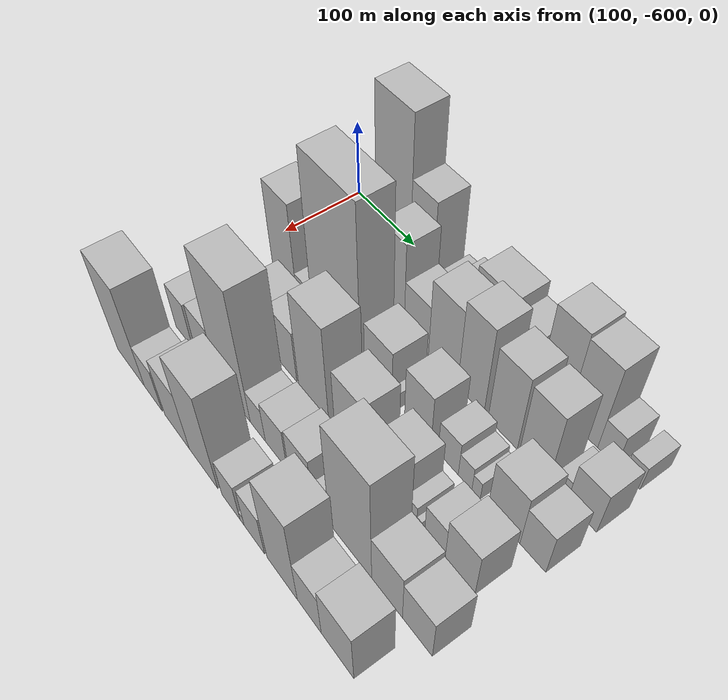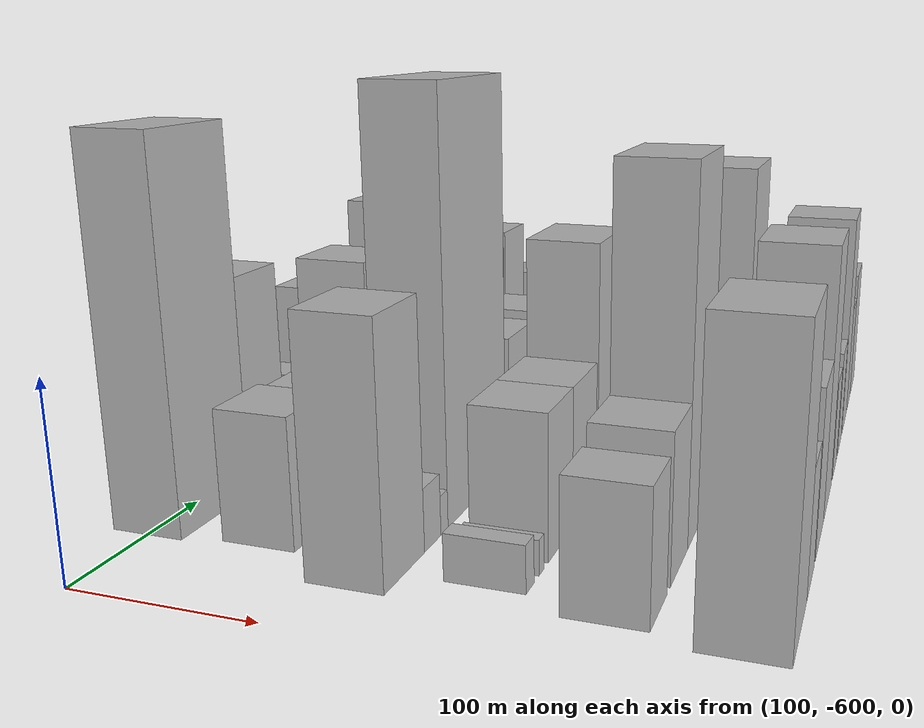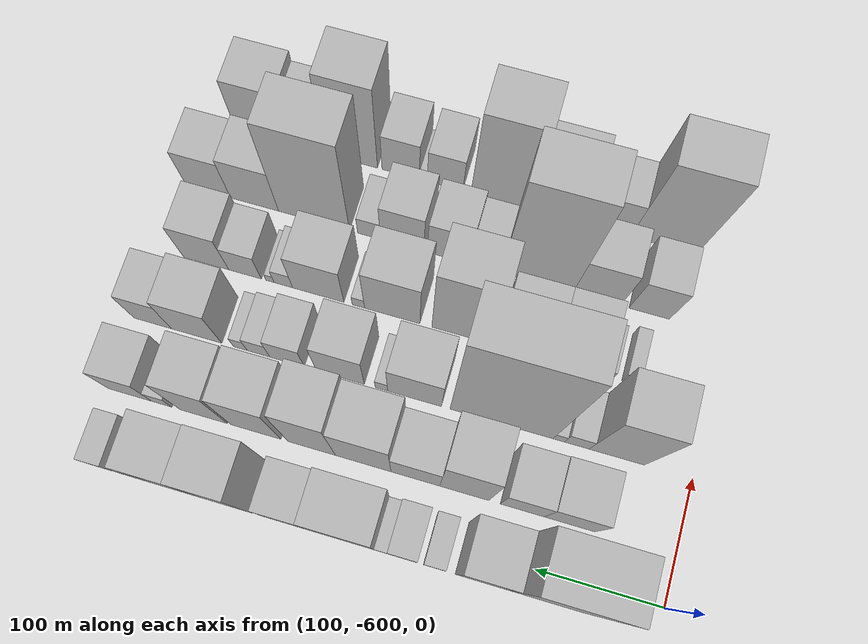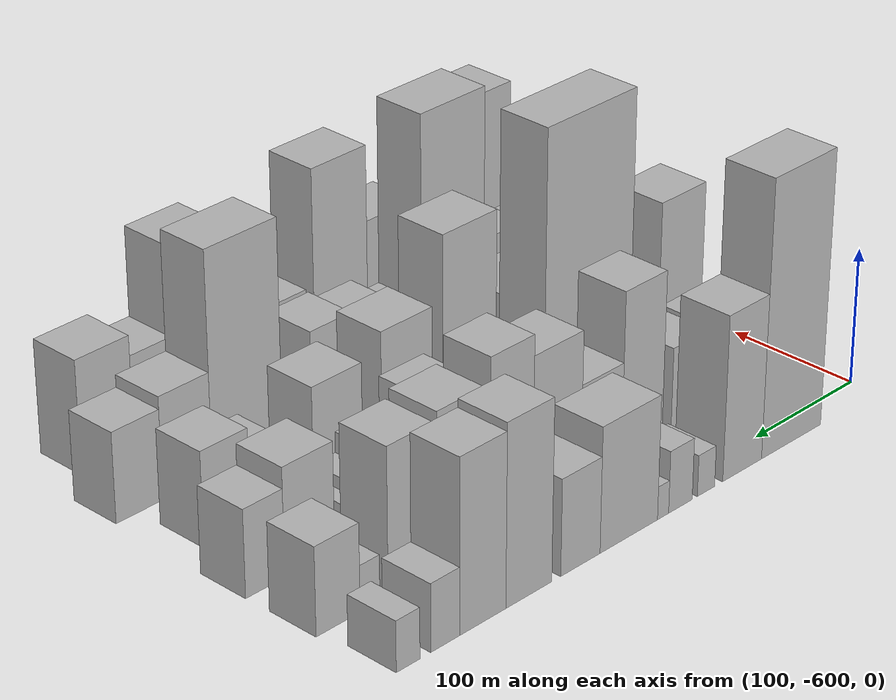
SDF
<sdf version="1.6">
 <world name="default">
  <model name="building_12">
   <static>1</static>
   <pose>100.0000 -511.8463 0 0.000000 0.000000 0.000000</pose>
   <link name="link">
    <pose>0 0 100.50 0 0 0</pose>
    <collision name="collision"><geometry><box><size>40.0000 60.7174 201.0000</size></box></geometry></collision>
    <visual name="visual">
     <cast_shadows>0</cast_shadows>
     <geometry><box><size>40.0000 60.7174 201.0000</size></box></geometry>
     <material>
      <script>
       <uri>model://HANNAS_wall/materials/scripts</uri>
       <uri>model://HANNAS_wall/materials/textures</uri>
       <name>vrc/HANNAS_wall</name>
      </script>
     </material>
    </visual>
   </link>
  </model>
  <model name="building_13">
   <static>1</static>
   <pose>100.0000 -462.0579 0 0.000000 0.000000 0.000000</pose>
   <link name="link">
    <pose>0 0 60.00 0 0 0</pose>
    <collision name="collision"><geometry><box><size>40.0000 38.8594 120.0000</size></box></geometry></collision>
    <visual name="visual">
     <cast_shadows>0</cast_shadows>
     <geometry><box><size>40.0000 38.8594 120.0000</size></box></geometry>
     <material>
      <script>
       <uri>model://HANNAS_wall/materials/scripts</uri>
       <uri>model://HANNAS_wall/materials/textures</uri>
       <name>vrc/HANNAS_wall</name>
      </script>
     </material>
    </visual>
   </link>
  </model>
  <model name="building_14">
   <static>1</static>
   <pose>100.0000 -426.1615 0 0.000000 0.000000 0.000000</pose>
   <link name="link">
    <pose>0 0 15.00 0 0 0</pose>
    <collision name="collision"><geometry><box><size>40.0000 16.9334 30.0000</size></box></geometry></collision>
    <visual name="visual">
     <cast_shadows>0</cast_shadows>
     <geometry><box><size>40.0000 16.9334 30.0000</size></box></geometry>
     <material>
      <script>
       <uri>model://HANNAS_wall/materials/scripts</uri>
       <uri>model://HANNAS_wall/materials/textures</uri>
       <name>vrc/HANNAS_wall</name>
      </script>
     </material>
    </visual>
   </link>
  </model>
  <model name="building_15">
   <static>1</static>
   <pose>100.0000 -401.3108 0 0.000000 0.000000 0.000000</pose>
   <link name="link">
    <pose>0 0 22.50 0 0 0</pose>
    <collision name="collision"><geometry><box><size>40.0000 22.7680 45.0000</size></box></geometry></collision>
    <visual name="visual">
     <cast_shadows>0</cast_shadows>
     <geometry><box><size>40.0000 22.7680 45.0000</size></box></geometry>
     <material>
      <script>
       <uri>model://HANNAS_wall/materials/scripts</uri>
       <uri>model://HANNAS_wall/materials/textures</uri>
       <name>vrc/HANNAS_wall</name>
      </script>
     </material>
    </visual>
   </link>
  </model>
  <model name="building_16">
   <static>1</static>
   <pose>100.0000 -384.6139 0 0.000000 0.000000 0.000000</pose>
   <link name="link">
    <pose>0 0 12.00 0 0 0</pose>
    <collision name="collision"><geometry><box><size>40.0000 10.6258 24.0000</size></box></geometry></collision>
    <visual name="visual">
     <cast_shadows>0</cast_shadows>
     <geometry><box><size>40.0000 10.6258 24.0000</size></box></geometry>
     <material>
      <script>
       <uri>model://HANNAS_wall/materials/scripts</uri>
       <uri>model://HANNAS_wall/materials/textures</uri>
       <name>vrc/HANNAS_wall</name>
      </script>
     </material>
    </visual>
   </link>
  </model>
  <model name="building_17">
   <static>1</static>
   <pose>100.0000 -352.3852 0 0.000000 0.000000 0.000000</pose>
   <link name="link">
    <pose>0 0 45.00 0 0 0</pose>
    <collision name="collision"><geometry><box><size>40.0000 53.8316 90.0000</size></box></geometry></collision>
    <visual name="visual">
     <cast_shadows>0</cast_shadows>
     <geometry><box><size>40.0000 53.8316 90.0000</size></box></geometry>
     <material>
      <script>
       <uri>model://HANNAS_wall/materials/scripts</uri>
       <uri>model://HANNAS_wall/materials/textures</uri>
       <name>vrc/HANNAS_wall</name>
      </script>
     </material>
    </visual>
   </link>
  </model>
  <model name="building_18">
   <static>1</static>
   <pose>100.0000 -307.5381 0 0.000000 0.000000 0.000000</pose>
   <link name="link">
    <pose>0 0 34.50 0 0 0</pose>
    <collision name="collision"><geometry><box><size>40.0000 35.8625 69.0000</size></box></geometry></collision>
    <visual name="visual">
     <cast_shadows>0</cast_shadows>
     <geometry><box><size>40.0000 35.8625 69.0000</size></box></geometry>
     <material>
      <script>
       <uri>model://HANNAS_wall/materials/scripts</uri>
       <uri>model://HANNAS_wall/materials/textures</uri>
       <name>vrc/HANNAS_wall</name>
      </script>
     </material>
    </visual>
   </link>
  </model>
  <model name="building_19">
   <static>1</static>
   <pose>100.0000 -261.2443 0 0.000000 0.000000 0.000000</pose>
   <link name="link">
    <pose>0 0 64.50 0 0 0</pose>
    <collision name="collision"><geometry><box><size>40.0000 40.7252 129.0000</size></box></geometry></collision>
    <visual name="visual">
     <cast_shadows>0</cast_shadows>
     <geometry><box><size>40.0000 40.7252 129.0000</size></box></geometry>
     <material>
      <script>
       <uri>model://HANNAS_wall/materials/scripts</uri>
       <uri>model://HANNAS_wall/materials/textures</uri>
       <name>vrc/HANNAS_wall</name>
      </script>
     </material>
    </visual>
   </link>
  </model>
  <model name="building_20">
   <static>1</static>
   <pose>100.0000 -220.8831 0 0.000000 0.000000 0.000000</pose>
   <link name="link">
    <pose>0 0 61.50 0 0 0</pose>
    <collision name="collision"><geometry><box><size>40.0000 39.9972 123.0000</size></box></geometry></collision>
    <visual name="visual">
     <cast_shadows>0</cast_shadows>
     <geometry><box><size>40.0000 39.9972 123.0000</size></box></geometry>
     <material>
      <script>
       <uri>model://HANNAS_wall/materials/scripts</uri>
       <uri>model://HANNAS_wall/materials/textures</uri>
       <name>vrc/HANNAS_wall</name>
      </script>
     </material>
    </visual>
   </link>
  </model>
  <model name="building_21">
   <static>1</static>
   <pose>100.0000 -188.6881 0 0.000000 0.000000 0.000000</pose>
   <link name="link">
    <pose>0 0 24.00 0 0 0</pose>
    <collision name="collision"><geometry><box><size>40.0000 24.3927 48.0000</size></box></geometry></collision>
    <visual name="visual">
     <cast_shadows>0</cast_shadows>
     <geometry><box><size>40.0000 24.3927 48.0000</size></box></geometry>
     <material>
      <script>
       <uri>model://HANNAS_wall/materials/scripts</uri>
       <uri>model://HANNAS_wall/materials/textures</uri>
       <name>vrc/HANNAS_wall</name>
      </script>
     </material>
    </visual>
   </link>
  </model>
  <model name="building_22">
   <static>1</static>
   <pose>100.0000 -157.6427 0 0.000000 0.000000 0.000000</pose>
   <link name="link">
    <pose>0 0 18.00 0 0 0</pose>
    <collision name="collision"><geometry><box><size>40.0000 19.6980 36.0000</size></box></geometry></collision>
    <visual name="visual">
     <cast_shadows>0</cast_shadows>
     <geometry><box><size>40.0000 19.6980 36.0000</size></box></geometry>
     <material>
      <script>
       <uri>model://HANNAS_wall/materials/scripts</uri>
       <uri>model://HANNAS_wall/materials/textures</uri>
       <name>vrc/HANNAS_wall</name>
      </script>
     </material>
    </visual>
   </link>
  </model>
  <model name="building_69">
   <static>1</static>
   <pose>160.0000 -516.7178 0 0.000000 0.000000 0.000000</pose>
   <link name="link">
    <pose>0 0 34.50 0 0 0</pose>
    <collision name="collision"><geometry><box><size>40.0000 39.8505 69.0000</size></box></geometry></collision>
    <visual name="visual">
     <cast_shadows>0</cast_shadows>
     <geometry><box><size>40.0000 39.8505 69.0000</size></box></geometry>
     <material>
      <script>
       <uri>model://HANNAS_wall/materials/scripts</uri>
       <uri>model://HANNAS_wall/materials/textures</uri>
       <name>vrc/HANNAS_wall</name>
      </script>
     </material>
    </visual>
   </link>
  </model>
  <model name="building_70">
   <static>1</static>
   <pose>160.0000 -479.3615 0 0.000000 0.000000 0.000000</pose>
   <link name="link">
    <pose>0 0 33.00 0 0 0</pose>
    <collision name="collision"><geometry><box><size>40.0000 34.8621 66.0000</size></box></geometry></collision>
    <visual name="visual">
     <cast_shadows>0</cast_shadows>
     <geometry><box><size>40.0000 34.8621 66.0000</size></box></geometry>
     <material>
      <script>
       <uri>model://HANNAS_wall/materials/scripts</uri>
       <uri>model://HANNAS_wall/materials/textures</uri>
       <name>vrc/HANNAS_wall</name>
      </script>
     </material>
    </visual>
   </link>
  </model>
  <model name="building_71">
   <static>1</static>
   <pose>160.0000 -433.1815 0 0.000000 0.000000 0.000000</pose>
   <link name="link">
    <pose>0 0 63.00 0 0 0</pose>
    <collision name="collision"><geometry><box><size>40.0000 39.4978 126.0000</size></box></geometry></collision>
    <visual name="visual">
     <cast_shadows>0</cast_shadows>
     <geometry><box><size>40.0000 39.4978 126.0000</size></box></geometry>
     <material>
      <script>
       <uri>model://HANNAS_wall/materials/scripts</uri>
       <uri>model://HANNAS_wall/materials/textures</uri>
       <name>vrc/HANNAS_wall</name>
      </script>
     </material>
    </visual>
   </link>
  </model>
  <model name="building_72">
   <static>1</static>
   <pose>160.0000 -393.9403 0 0.000000 0.000000 0.000000</pose>
   <link name="link">
    <pose>0 0 37.50 0 0 0</pose>
    <collision name="collision"><geometry><box><size>40.0000 38.9846 75.0000</size></box></geometry></collision>
    <visual name="visual">
     <cast_shadows>0</cast_shadows>
     <geometry><box><size>40.0000 38.9846 75.0000</size></box></geometry>
     <material>
      <script>
       <uri>model://HANNAS_wall/materials/scripts</uri>
       <uri>model://HANNAS_wall/materials/textures</uri>
       <name>vrc/HANNAS_wall</name>
      </script>
     </material>
    </visual>
   </link>
  </model>
  <model name="building_73">
   <static>1</static>
   <pose>160.0000 -351.9945 0 0.000000 0.000000 0.000000</pose>
   <link name="link">
    <pose>0 0 57.00 0 0 0</pose>
    <collision name="collision"><geometry><box><size>40.0000 44.9070 114.0000</size></box></geometry></collision>
    <visual name="visual">
     <cast_shadows>0</cast_shadows>
     <geometry><box><size>40.0000 44.9070 114.0000</size></box></geometry>
     <material>
      <script>
       <uri>model://HANNAS_wall/materials/scripts</uri>
       <uri>model://HANNAS_wall/materials/textures</uri>
       <name>vrc/HANNAS_wall</name>
      </script>
     </material>
    </visual>
   </link>
  </model>
  <model name="building_74">
   <static>1</static>
   <pose>160.0000 -310.1380 0 0.000000 0.000000 0.000000</pose>
   <link name="link">
    <pose>0 0 64.50 0 0 0</pose>
    <collision name="collision"><geometry><box><size>40.0000 38.8060 129.0000</size></box></geometry></collision>
    <visual name="visual">
     <cast_shadows>0</cast_shadows>
     <geometry><box><size>40.0000 38.8060 129.0000</size></box></geometry>
     <material>
      <script>
       <uri>model://HANNAS_wall/materials/scripts</uri>
       <uri>model://HANNAS_wall/materials/textures</uri>
       <name>vrc/HANNAS_wall</name>
      </script>
     </material>
    </visual>
   </link>
  </model>
  <model name="building_75">
   <static>1</static>
   <pose>160.0000 -264.1996 0 0.000000 0.000000 0.000000</pose>
   <link name="link">
    <pose>0 0 55.50 0 0 0</pose>
    <collision name="collision"><geometry><box><size>40.0000 41.0709 111.0000</size></box></geometry></collision>
    <visual name="visual">
     <cast_shadows>0</cast_shadows>
     <geometry><box><size>40.0000 41.0709 111.0000</size></box></geometry>
     <material>
      <script>
       <uri>model://HANNAS_wall/materials/scripts</uri>
       <uri>model://HANNAS_wall/materials/textures</uri>
       <name>vrc/HANNAS_wall</name>
      </script>
     </material>
    </visual>
   </link>
  </model>
  <model name="building_76">
   <static>1</static>
   <pose>160.0000 -221.0516 0 0.000000 0.000000 0.000000</pose>
   <link name="link">
    <pose>0 0 52.50 0 0 0</pose>
    <collision name="collision"><geometry><box><size>40.0000 39.2251 105.0000</size></box></geometry></collision>
    <visual name="visual">
     <cast_shadows>0</cast_shadows>
     <geometry><box><size>40.0000 39.2251 105.0000</size></box></geometry>
     <material>
      <script>
       <uri>model://HANNAS_wall/materials/scripts</uri>
       <uri>model://HANNAS_wall/materials/textures</uri>
       <name>vrc/HANNAS_wall</name>
      </script>
     </material>
    </visual>
   </link>
  </model>
  <model name="building_77">
   <static>1</static>
   <pose>160.0000 -186.0907 0 0.000000 0.000000 0.000000</pose>
   <link name="link">
    <pose>0 0 16.50 0 0 0</pose>
    <collision name="collision"><geometry><box><size>40.0000 16.6968 33.0000</size></box></geometry></collision>
    <visual name="visual">
     <cast_shadows>0</cast_shadows>
     <geometry><box><size>40.0000 16.6968 33.0000</size></box></geometry>
     <material>
      <script>
       <uri>model://HANNAS_wall/materials/scripts</uri>
       <uri>model://HANNAS_wall/materials/textures</uri>
       <name>vrc/HANNAS_wall</name>
      </script>
     </material>
    </visual>
   </link>
  </model>
  <model name="building_78">
   <static>1</static>
   <pose>160.0000 -159.4520 0 0.000000 0.000000 0.000000</pose>
   <link name="link">
    <pose>0 0 31.50 0 0 0</pose>
    <collision name="collision"><geometry><box><size>40.0000 36.5805 63.0000</size></box></geometry></collision>
    <visual name="visual">
     <cast_shadows>0</cast_shadows>
     <geometry><box><size>40.0000 36.5805 63.0000</size></box></geometry>
     <material>
      <script>
       <uri>model://HANNAS_wall/materials/scripts</uri>
       <uri>model://HANNAS_wall/materials/textures</uri>
       <name>vrc/HANNAS_wall</name>
      </script>
     </material>
    </visual>
   </link>
  </model>
  <model name="building_119">
   <static>1</static>
   <pose>220.0000 -539.6814 0 0.000000 0.000000 0.000000</pose>
   <link name="link">
    <pose>0 0 64.50 0 0 0</pose>
    <collision name="collision"><geometry><box><size>40.0000 44.0747 129.0000</size></box></geometry></collision>
    <visual name="visual">
     <cast_shadows>0</cast_shadows>
     <geometry><box><size>40.0000 44.0747 129.0000</size></box></geometry>
     <material>
      <script>
       <uri>model://HANNAS_wall/materials/scripts</uri>
       <uri>model://HANNAS_wall/materials/textures</uri>
       <name>vrc/HANNAS_wall</name>
      </script>
     </material>
    </visual>
   </link>
  </model>
  <model name="building_120">
   <static>1</static>
   <pose>220.0000 -507.7807 0 0.000000 0.000000 0.000000</pose>
   <link name="link">
    <pose>0 0 16.50 0 0 0</pose>
    <collision name="collision"><geometry><box><size>40.0000 19.7268 33.0000</size></box></geometry></collision>
    <visual name="visual">
     <cast_shadows>0</cast_shadows>
     <geometry><box><size>40.0000 19.7268 33.0000</size></box></geometry>
     <material>
      <script>
       <uri>model://HANNAS_wall/materials/scripts</uri>
       <uri>model://HANNAS_wall/materials/textures</uri>
       <name>vrc/HANNAS_wall</name>
      </script>
     </material>
    </visual>
   </link>
  </model>
  <model name="building_121">
   <static>1</static>
   <pose>220.0000 -493.3393 0 0.000000 0.000000 0.000000</pose>
   <link name="link">
    <pose>0 0 10.50 0 0 0</pose>
    <collision name="collision"><geometry><box><size>40.0000 9.1559 21.0000</size></box></geometry></collision>
    <visual name="visual">
     <cast_shadows>0</cast_shadows>
     <geometry><box><size>40.0000 9.1559 21.0000</size></box></geometry>
     <material>
      <script>
       <uri>model://HANNAS_wall/materials/scripts</uri>
       <uri>model://HANNAS_wall/materials/textures</uri>
       <name>vrc/HANNAS_wall</name>
      </script>
     </material>
    </visual>
   </link>
  </model>
  <model name="building_122">
   <static>1</static>
   <pose>220.0000 -446.8748 0 0.000000 0.000000 0.000000</pose>
   <link name="link">
    <pose>0 0 111.00 0 0 0</pose>
    <collision name="collision"><geometry><box><size>40.0000 83.7732 222.0000</size></box></geometry></collision>
    <visual name="visual">
     <cast_shadows>0</cast_shadows>
     <geometry><box><size>40.0000 83.7732 222.0000</size></box></geometry>
     <material>
      <script>
       <uri>model://HANNAS_wall/materials/scripts</uri>
       <uri>model://HANNAS_wall/materials/textures</uri>
       <name>vrc/HANNAS_wall</name>
      </script>
     </material>
    </visual>
   </link>
  </model>
  <model name="building_123">
   <static>1</static>
   <pose>220.0000 -375.9356 0 0.000000 0.000000 0.000000</pose>
   <link name="link">
    <pose>0 0 37.50 0 0 0</pose>
    <collision name="collision"><geometry><box><size>40.0000 44.1051 75.0000</size></box></geometry></collision>
    <visual name="visual">
     <cast_shadows>0</cast_shadows>
     <geometry><box><size>40.0000 44.1051 75.0000</size></box></geometry>
     <material>
      <script>
       <uri>model://HANNAS_wall/materials/scripts</uri>
       <uri>model://HANNAS_wall/materials/textures</uri>
       <name>vrc/HANNAS_wall</name>
      </script>
     </material>
    </visual>
   </link>
  </model>
  <model name="building_124">
   <static>1</static>
   <pose>220.0000 -348.7385 0 0.000000 0.000000 0.000000</pose>
   <link name="link">
    <pose>0 0 12.00 0 0 0</pose>
    <collision name="collision"><geometry><box><size>40.0000 10.2891 24.0000</size></box></geometry></collision>
    <visual name="visual">
     <cast_shadows>0</cast_shadows>
     <geometry><box><size>40.0000 10.2891 24.0000</size></box></geometry>
     <material>
      <script>
       <uri>model://HANNAS_wall/materials/scripts</uri>
       <uri>model://HANNAS_wall/materials/textures</uri>
       <name>vrc/HANNAS_wall</name>
      </script>
     </material>
    </visual>
   </link>
  </model>
  <model name="building_125">
   <static>1</static>
   <pose>220.0000 -314.6017 0 0.000000 0.000000 0.000000</pose>
   <link name="link">
    <pose>0 0 37.50 0 0 0</pose>
    <collision name="collision"><geometry><box><size>40.0000 39.9845 75.0000</size></box></geometry></collision>
    <visual name="visual">
     <cast_shadows>0</cast_shadows>
     <geometry><box><size>40.0000 39.9845 75.0000</size></box></geometry>
     <material>
      <script>
       <uri>model://HANNAS_wall/materials/scripts</uri>
       <uri>model://HANNAS_wall/materials/textures</uri>
       <name>vrc/HANNAS_wall</name>
      </script>
     </material>
    </visual>
   </link>
  </model>
  <model name="building_126">
   <static>1</static>
   <pose>220.0000 -270.1505 0 0.000000 0.000000 0.000000</pose>
   <link name="link">
    <pose>0 0 25.50 0 0 0</pose>
    <collision name="collision"><geometry><box><size>40.0000 28.9178 51.0000</size></box></geometry></collision>
    <visual name="visual">
     <cast_shadows>0</cast_shadows>
     <geometry><box><size>40.0000 28.9178 51.0000</size></box></geometry>
     <material>
      <script>
       <uri>model://HANNAS_wall/materials/scripts</uri>
       <uri>model://HANNAS_wall/materials/textures</uri>
       <name>vrc/HANNAS_wall</name>
      </script>
     </material>
    </visual>
   </link>
  </model>
  <model name="building_127">
   <static>1</static>
   <pose>220.0000 -246.1672 0 0.000000 0.000000 0.000000</pose>
   <link name="link">
    <pose>0 0 18.00 0 0 0</pose>
    <collision name="collision"><geometry><box><size>40.0000 19.0489 36.0000</size></box></geometry></collision>
    <visual name="visual">
     <cast_shadows>0</cast_shadows>
     <geometry><box><size>40.0000 19.0489 36.0000</size></box></geometry>
     <material>
      <script>
       <uri>model://HANNAS_wall/materials/scripts</uri>
       <uri>model://HANNAS_wall/materials/textures</uri>
       <name>vrc/HANNAS_wall</name>
      </script>
     </material>
    </visual>
   </link>
  </model>
  <model name="building_128">
   <static>1</static>
   <pose>220.0000 -230.9253 0 0.000000 0.000000 0.000000</pose>
   <link name="link">
    <pose>0 0 13.50 0 0 0</pose>
    <collision name="collision"><geometry><box><size>40.0000 11.4348 27.0000</size></box></geometry></collision>
    <visual name="visual">
     <cast_shadows>0</cast_shadows>
     <geometry><box><size>40.0000 11.4348 27.0000</size></box></geometry>
     <material>
      <script>
       <uri>model://HANNAS_wall/materials/scripts</uri>
       <uri>model://HANNAS_wall/materials/textures</uri>
       <name>vrc/HANNAS_wall</name>
      </script>
     </material>
    </visual>
   </link>
  </model>
  <model name="building_129">
   <static>1</static>
   <pose>220.0000 -194.0161 0 0.000000 0.000000 0.000000</pose>
   <link name="link">
    <pose>0 0 39.00 0 0 0</pose>
    <collision name="collision"><geometry><box><size>40.0000 42.3837 78.0000</size></box></geometry></collision>
    <visual name="visual">
     <cast_shadows>0</cast_shadows>
     <geometry><box><size>40.0000 42.3837 78.0000</size></box></geometry>
     <material>
      <script>
       <uri>model://HANNAS_wall/materials/scripts</uri>
       <uri>model://HANNAS_wall/materials/textures</uri>
       <name>vrc/HANNAS_wall</name>
      </script>
     </material>
    </visual>
   </link>
  </model>
  <model name="building_130">
   <static>1</static>
   <pose>220.0000 -156.6084 0 0.000000 0.000000 0.000000</pose>
   <link name="link">
    <pose>0 0 31.50 0 0 0</pose>
    <collision name="collision"><geometry><box><size>40.0000 32.4318 63.0000</size></box></geometry></collision>
    <visual name="visual">
     <cast_shadows>0</cast_shadows>
     <geometry><box><size>40.0000 32.4318 63.0000</size></box></geometry>
     <material>
      <script>
       <uri>model://HANNAS_wall/materials/scripts</uri>
       <uri>model://HANNAS_wall/materials/textures</uri>
       <name>vrc/HANNAS_wall</name>
      </script>
     </material>
    </visual>
   </link>
  </model>
  <model name="building_170">
   <static>1</static>
   <pose>280.0000 -535.5327 0 0.000000 0.000000 0.000000</pose>
   <link name="link">
    <pose>0 0 12.00 0 0 0</pose>
    <collision name="collision"><geometry><box><size>40.0000 11.3222 24.0000</size></box></geometry></collision>
    <visual name="visual">
     <cast_shadows>0</cast_shadows>
     <geometry><box><size>40.0000 11.3222 24.0000</size></box></geometry>
     <material>
      <script>
       <uri>model://HANNAS_wall/materials/scripts</uri>
       <uri>model://HANNAS_wall/materials/textures</uri>
       <name>vrc/HANNAS_wall</name>
      </script>
     </material>
    </visual>
   </link>
  </model>
  <model name="building_171">
   <static>1</static>
   <pose>280.0000 -518.9768 0 0.000000 0.000000 0.000000</pose>
   <link name="link">
    <pose>0 0 9.00 0 0 0</pose>
    <collision name="collision"><geometry><box><size>40.0000 7.7896 18.0000</size></box></geometry></collision>
    <visual name="visual">
     <cast_shadows>0</cast_shadows>
     <geometry><box><size>40.0000 7.7896 18.0000</size></box></geometry>
     <material>
      <script>
       <uri>model://HANNAS_wall/materials/scripts</uri>
       <uri>model://HANNAS_wall/materials/textures</uri>
       <name>vrc/HANNAS_wall</name>
      </script>
     </material>
    </visual>
   </link>
  </model>
  <model name="building_172">
   <static>1</static>
   <pose>280.0000 -489.2974 0 0.000000 0.000000 0.000000</pose>
   <link name="link">
    <pose>0 0 37.50 0 0 0</pose>
    <collision name="collision"><geometry><box><size>40.0000 39.5693 75.0000</size></box></geometry></collision>
    <visual name="visual">
     <cast_shadows>0</cast_shadows>
     <geometry><box><size>40.0000 39.5693 75.0000</size></box></geometry>
     <material>
      <script>
       <uri>model://HANNAS_wall/materials/scripts</uri>
       <uri>model://HANNAS_wall/materials/textures</uri>
       <name>vrc/HANNAS_wall</name>
      </script>
     </material>
    </visual>
   </link>
  </model>
  <model name="building_173">
   <static>1</static>
   <pose>280.0000 -447.9947 0 0.000000 0.000000 0.000000</pose>
   <link name="link">
    <pose>0 0 37.50 0 0 0</pose>
    <collision name="collision"><geometry><box><size>40.0000 43.0362 75.0000</size></box></geometry></collision>
    <visual name="visual">
     <cast_shadows>0</cast_shadows>
     <geometry><box><size>40.0000 43.0362 75.0000</size></box></geometry>
     <material>
      <script>
       <uri>model://HANNAS_wall/materials/scripts</uri>
       <uri>model://HANNAS_wall/materials/textures</uri>
       <name>vrc/HANNAS_wall</name>
      </script>
     </material>
    </visual>
   </link>
  </model>
  <model name="building_174">
   <static>1</static>
   <pose>280.0000 -398.2575 0 0.000000 0.000000 0.000000</pose>
   <link name="link">
    <pose>0 0 69.00 0 0 0</pose>
    <collision name="collision"><geometry><box><size>40.0000 50.4382 138.0000</size></box></geometry></collision>
    <visual name="visual">
     <cast_shadows>0</cast_shadows>
     <geometry><box><size>40.0000 50.4382 138.0000</size></box></geometry>
     <material>
      <script>
       <uri>model://HANNAS_wall/materials/scripts</uri>
       <uri>model://HANNAS_wall/materials/textures</uri>
       <name>vrc/HANNAS_wall</name>
      </script>
     </material>
    </visual>
   </link>
  </model>
  <model name="building_175">
   <static>1</static>
   <pose>280.0000 -339.8019 0 0.000000 0.000000 0.000000</pose>
   <link name="link">
    <pose>0 0 45.00 0 0 0</pose>
    <collision name="collision"><geometry><box><size>40.0000 46.4729 90.0000</size></box></geometry></collision>
    <visual name="visual">
     <cast_shadows>0</cast_shadows>
     <geometry><box><size>40.0000 46.4729 90.0000</size></box></geometry>
     <material>
      <script>
       <uri>model://HANNAS_wall/materials/scripts</uri>
       <uri>model://HANNAS_wall/materials/textures</uri>
       <name>vrc/HANNAS_wall</name>
      </script>
     </material>
    </visual>
   </link>
  </model>
  <model name="building_176">
   <static>1</static>
   <pose>280.0000 -311.3182 0 0.000000 0.000000 0.000000</pose>
   <link name="link">
    <pose>0 0 10.50 0 0 0</pose>
    <collision name="collision"><geometry><box><size>40.0000 10.4946 21.0000</size></box></geometry></collision>
    <visual name="visual">
     <cast_shadows>0</cast_shadows>
     <geometry><box><size>40.0000 10.4946 21.0000</size></box></geometry>
     <material>
      <script>
       <uri>model://HANNAS_wall/materials/scripts</uri>
       <uri>model://HANNAS_wall/materials/textures</uri>
       <name>vrc/HANNAS_wall</name>
      </script>
     </material>
    </visual>
   </link>
  </model>
  <model name="building_177">
   <static>1</static>
   <pose>280.0000 -277.1904 0 0.000000 0.000000 0.000000</pose>
   <link name="link">
    <pose>0 0 37.50 0 0 0</pose>
    <collision name="collision"><geometry><box><size>40.0000 43.7611 75.0000</size></box></geometry></collision>
    <visual name="visual">
     <cast_shadows>0</cast_shadows>
     <geometry><box><size>40.0000 43.7611 75.0000</size></box></geometry>
     <material>
      <script>
       <uri>model://HANNAS_wall/materials/scripts</uri>
       <uri>model://HANNAS_wall/materials/textures</uri>
       <name>vrc/HANNAS_wall</name>
      </script>
     </material>
    </visual>
   </link>
  </model>
  <model name="building_178">
   <static>1</static>
   <pose>280.0000 -247.3707 0 0.000000 0.000000 0.000000</pose>
   <link name="link">
    <pose>0 0 15.00 0 0 0</pose>
    <collision name="collision"><geometry><box><size>40.0000 15.8783 30.0000</size></box></geometry></collision>
    <visual name="visual">
     <cast_shadows>0</cast_shadows>
     <geometry><box><size>40.0000 15.8783 30.0000</size></box></geometry>
     <material>
      <script>
       <uri>model://HANNAS_wall/materials/scripts</uri>
       <uri>model://HANNAS_wall/materials/textures</uri>
       <name>vrc/HANNAS_wall</name>
      </script>
     </material>
    </visual>
   </link>
  </model>
  <model name="building_179">
   <static>1</static>
   <pose>280.0000 -235.9847 0 0.000000 0.000000 0.000000</pose>
   <link name="link">
    <pose>0 0 7.50 0 0 0</pose>
    <collision name="collision"><geometry><box><size>40.0000 6.8936 15.0000</size></box></geometry></collision>
    <visual name="visual">
     <cast_shadows>0</cast_shadows>
     <geometry><box><size>40.0000 6.8936 15.0000</size></box></geometry>
     <material>
      <script>
       <uri>model://HANNAS_wall/materials/scripts</uri>
       <uri>model://HANNAS_wall/materials/textures</uri>
       <name>vrc/HANNAS_wall</name>
      </script>
     </material>
    </visual>
   </link>
  </model>
  <model name="building_180">
   <static>1</static>
   <pose>280.0000 -214.5073 0 0.000000 0.000000 0.000000</pose>
   <link name="link">
    <pose>0 0 25.50 0 0 0</pose>
    <collision name="collision"><geometry><box><size>40.0000 28.0612 51.0000</size></box></geometry></collision>
    <visual name="visual">
     <cast_shadows>0</cast_shadows>
     <geometry><box><size>40.0000 28.0612 51.0000</size></box></geometry>
     <material>
      <script>
       <uri>model://HANNAS_wall/materials/scripts</uri>
       <uri>model://HANNAS_wall/materials/textures</uri>
       <name>vrc/HANNAS_wall</name>
      </script>
     </material>
    </visual>
   </link>
  </model>
  <model name="building_181">
   <static>1</static>
   <pose>280.0000 -180.8566 0 0.000000 0.000000 0.000000</pose>
   <link name="link">
    <pose>0 0 34.50 0 0 0</pose>
    <collision name="collision"><geometry><box><size>40.0000 39.2402 69.0000</size></box></geometry></collision>
    <visual name="visual">
     <cast_shadows>0</cast_shadows>
     <geometry><box><size>40.0000 39.2402 69.0000</size></box></geometry>
     <material>
      <script>
       <uri>model://HANNAS_wall/materials/scripts</uri>
       <uri>model://HANNAS_wall/materials/textures</uri>
       <name>vrc/HANNAS_wall</name>
      </script>
     </material>
    </visual>
   </link>
  </model>
  <model name="building_228">
   <static>1</static>
   <pose>340.0000 -538.7283 0 0.000000 0.000000 0.000000</pose>
   <link name="link">
    <pose>0 0 33.00 0 0 0</pose>
    <collision name="collision"><geometry><box><size>40.0000 33.4895 66.0000</size></box></geometry></collision>
    <visual name="visual">
     <cast_shadows>0</cast_shadows>
     <geometry><box><size>40.0000 33.4895 66.0000</size></box></geometry>
     <material>
      <script>
       <uri>model://HANNAS_wall/materials/scripts</uri>
       <uri>model://HANNAS_wall/materials/textures</uri>
       <name>vrc/HANNAS_wall</name>
      </script>
     </material>
    </visual>
   </link>
  </model>
  <model name="building_229">
   <static>1</static>
   <pose>340.0000 -495.1250 0 0.000000 0.000000 0.000000</pose>
   <link name="link">
    <pose>0 0 37.50 0 0 0</pose>
    <collision name="collision"><geometry><box><size>40.0000 39.7169 75.0000</size></box></geometry></collision>
    <visual name="visual">
     <cast_shadows>0</cast_shadows>
     <geometry><box><size>40.0000 39.7169 75.0000</size></box></geometry>
     <material>
      <script>
       <uri>model://HANNAS_wall/materials/scripts</uri>
       <uri>model://HANNAS_wall/materials/textures</uri>
       <name>vrc/HANNAS_wall</name>
      </script>
     </material>
    </visual>
   </link>
  </model>
  <model name="building_230">
   <static>1</static>
   <pose>340.0000 -444.8771 0 0.000000 0.000000 0.000000</pose>
   <link name="link">
    <pose>0 0 94.50 0 0 0</pose>
    <collision name="collision"><geometry><box><size>40.0000 60.7790 189.0000</size></box></geometry></collision>
    <visual name="visual">
     <cast_shadows>0</cast_shadows>
     <geometry><box><size>40.0000 60.7790 189.0000</size></box></geometry>
     <material>
      <script>
       <uri>model://HANNAS_wall/materials/scripts</uri>
       <uri>model://HANNAS_wall/materials/textures</uri>
       <name>vrc/HANNAS_wall</name>
      </script>
     </material>
    </visual>
   </link>
  </model>
  <model name="building_231">
   <static>1</static>
   <pose>340.0000 -401.3594 0 0.000000 0.000000 0.000000</pose>
   <link name="link">
    <pose>0 0 25.50 0 0 0</pose>
    <collision name="collision"><geometry><box><size>40.0000 26.2564 51.0000</size></box></geometry></collision>
    <visual name="visual">
     <cast_shadows>0</cast_shadows>
     <geometry><box><size>40.0000 26.2564 51.0000</size></box></geometry>
     <material>
      <script>
       <uri>model://HANNAS_wall/materials/scripts</uri>
       <uri>model://HANNAS_wall/materials/textures</uri>
       <name>vrc/HANNAS_wall</name>
      </script>
     </material>
    </visual>
   </link>
  </model>
  <model name="building_232">
   <static>1</static>
   <pose>340.0000 -370.2038 0 0.000000 0.000000 0.000000</pose>
   <link name="link">
    <pose>0 0 31.50 0 0 0</pose>
    <collision name="collision"><geometry><box><size>40.0000 36.0546 63.0000</size></box></geometry></collision>
    <visual name="visual">
     <cast_shadows>0</cast_shadows>
     <geometry><box><size>40.0000 36.0546 63.0000</size></box></geometry>
     <material>
      <script>
       <uri>model://HANNAS_wall/materials/scripts</uri>
       <uri>model://HANNAS_wall/materials/textures</uri>
       <name>vrc/HANNAS_wall</name>
      </script>
     </material>
    </visual>
   </link>
  </model>
  <model name="building_233">
   <static>1</static>
   <pose>340.0000 -330.5475 0 0.000000 0.000000 0.000000</pose>
   <link name="link">
    <pose>0 0 34.50 0 0 0</pose>
    <collision name="collision"><geometry><box><size>40.0000 37.2581 69.0000</size></box></geometry></collision>
    <visual name="visual">
     <cast_shadows>0</cast_shadows>
     <geometry><box><size>40.0000 37.2581 69.0000</size></box></geometry>
     <material>
      <script>
       <uri>model://HANNAS_wall/materials/scripts</uri>
       <uri>model://HANNAS_wall/materials/textures</uri>
       <name>vrc/HANNAS_wall</name>
      </script>
     </material>
    </visual>
   </link>
  </model>
  <model name="building_234">
   <static>1</static>
   <pose>340.0000 -302.0805 0 0.000000 0.000000 0.000000</pose>
   <link name="link">
    <pose>0 0 16.50 0 0 0</pose>
    <collision name="collision"><geometry><box><size>40.0000 19.6759 33.0000</size></box></geometry></collision>
    <visual name="visual">
     <cast_shadows>0</cast_shadows>
     <geometry><box><size>40.0000 19.6759 33.0000</size></box></geometry>
     <material>
      <script>
       <uri>model://HANNAS_wall/materials/scripts</uri>
       <uri>model://HANNAS_wall/materials/textures</uri>
       <name>vrc/HANNAS_wall</name>
      </script>
     </material>
    </visual>
   </link>
  </model>
  <model name="building_235">
   <static>1</static>
   <pose>340.0000 -254.3644 0 0.000000 0.000000 0.000000</pose>
   <link name="link">
    <pose>0 0 81.00 0 0 0</pose>
    <collision name="collision"><geometry><box><size>40.0000 61.7562 162.0000</size></box></geometry></collision>
    <visual name="visual">
     <cast_shadows>0</cast_shadows>
     <geometry><box><size>40.0000 61.7562 162.0000</size></box></geometry>
     <material>
      <script>
       <uri>model://HANNAS_wall/materials/scripts</uri>
       <uri>model://HANNAS_wall/materials/textures</uri>
       <name>vrc/HANNAS_wall</name>
      </script>
     </material>
    </visual>
   </link>
  </model>
  <model name="building_236">
   <static>1</static>
   <pose>340.0000 -202.4139 0 0.000000 0.000000 0.000000</pose>
   <link name="link">
    <pose>0 0 37.50 0 0 0</pose>
    <collision name="collision"><geometry><box><size>40.0000 42.1448 75.0000</size></box></geometry></collision>
    <visual name="visual">
     <cast_shadows>0</cast_shadows>
     <geometry><box><size>40.0000 42.1448 75.0000</size></box></geometry>
     <material>
      <script>
       <uri>model://HANNAS_wall/materials/scripts</uri>
       <uri>model://HANNAS_wall/materials/textures</uri>
       <name>vrc/HANNAS_wall</name>
      </script>
     </material>
    </visual>
   </link>
  </model>
  <model name="building_237">
   <static>1</static>
   <pose>340.0000 -161.8263 0 0.000000 0.000000 0.000000</pose>
   <link name="link">
    <pose>0 0 33.00 0 0 0</pose>
    <collision name="collision"><geometry><box><size>40.0000 39.0305 66.0000</size></box></geometry></collision>
    <visual name="visual">
     <cast_shadows>0</cast_shadows>
     <geometry><box><size>40.0000 39.0305 66.0000</size></box></geometry>
     <material>
      <script>
       <uri>model://HANNAS_wall/materials/scripts</uri>
       <uri>model://HANNAS_wall/materials/textures</uri>
       <name>vrc/HANNAS_wall</name>
      </script>
     </material>
    </visual>
   </link>
  </model>
  <model name="building_282">
   <static>1</static>
   <pose>400.0000 -537.0556 0 0.000000 0.000000 0.000000</pose>
   <link name="link">
    <pose>0 0 72.00 0 0 0</pose>
    <collision name="collision"><geometry><box><size>40.0000 55.6500 144.0000</size></box></geometry></collision>
    <visual name="visual">
     <cast_shadows>0</cast_shadows>
     <geometry><box><size>40.0000 55.6500 144.0000</size></box></geometry>
     <material>
      <script>
       <uri>model://HANNAS_wall/materials/scripts</uri>
       <uri>model://HANNAS_wall/materials/textures</uri>
       <name>vrc/HANNAS_wall</name>
      </script>
     </material>
    </visual>
   </link>
  </model>
  <model name="building_283">
   <static>1</static>
   <pose>400.0000 -491.7282 0 0.000000 0.000000 0.000000</pose>
   <link name="link">
    <pose>0 0 31.50 0 0 0</pose>
    <collision name="collision"><geometry><box><size>40.0000 35.0048 63.0000</size></box></geometry></collision>
    <visual name="visual">
     <cast_shadows>0</cast_shadows>
     <geometry><box><size>40.0000 35.0048 63.0000</size></box></geometry>
     <material>
      <script>
       <uri>model://HANNAS_wall/materials/scripts</uri>
       <uri>model://HANNAS_wall/materials/textures</uri>
       <name>vrc/HANNAS_wall</name>
      </script>
     </material>
    </visual>
   </link>
  </model>
  <model name="building_284">
   <static>1</static>
   <pose>400.0000 -446.2190 0 0.000000 0.000000 0.000000</pose>
   <link name="link">
    <pose>0 0 43.50 0 0 0</pose>
    <collision name="collision"><geometry><box><size>40.0000 46.0137 87.0000</size></box></geometry></collision>
    <visual name="visual">
     <cast_shadows>0</cast_shadows>
     <geometry><box><size>40.0000 46.0137 87.0000</size></box></geometry>
     <material>
      <script>
       <uri>model://HANNAS_wall/materials/scripts</uri>
       <uri>model://HANNAS_wall/materials/textures</uri>
       <name>vrc/HANNAS_wall</name>
      </script>
     </material>
    </visual>
   </link>
  </model>
  <model name="building_285">
   <static>1</static>
   <pose>400.0000 -397.9638 0 0.000000 0.000000 0.000000</pose>
   <link name="link">
    <pose>0 0 72.00 0 0 0</pose>
    <collision name="collision"><geometry><box><size>40.0000 50.4968 144.0000</size></box></geometry></collision>
    <visual name="visual">
     <cast_shadows>0</cast_shadows>
     <geometry><box><size>40.0000 50.4968 144.0000</size></box></geometry>
     <material>
      <script>
       <uri>model://HANNAS_wall/materials/scripts</uri>
       <uri>model://HANNAS_wall/materials/textures</uri>
       <name>vrc/HANNAS_wall</name>
      </script>
     </material>
    </visual>
   </link>
  </model>
  <model name="building_286">
   <static>1</static>
   <pose>400.0000 -350.2688 0 0.000000 0.000000 0.000000</pose>
   <link name="link">
    <pose>0 0 28.50 0 0 0</pose>
    <collision name="collision"><geometry><box><size>40.0000 30.8931 57.0000</size></box></geometry></collision>
    <visual name="visual">
     <cast_shadows>0</cast_shadows>
     <geometry><box><size>40.0000 30.8931 57.0000</size></box></geometry>
     <material>
      <script>
       <uri>model://HANNAS_wall/materials/scripts</uri>
       <uri>model://HANNAS_wall/materials/textures</uri>
       <name>vrc/HANNAS_wall</name>
      </script>
     </material>
    </visual>
   </link>
  </model>
  <model name="building_287">
   <static>1</static>
   <pose>400.0000 -331.3963 0 0.000000 0.000000 0.000000</pose>
   <link name="link">
    <pose>0 0 7.50 0 0 0</pose>
    <collision name="collision"><geometry><box><size>40.0000 6.8519 15.0000</size></box></geometry></collision>
    <visual name="visual">
     <cast_shadows>0</cast_shadows>
     <geometry><box><size>40.0000 6.8519 15.0000</size></box></geometry>
     <material>
      <script>
       <uri>model://HANNAS_wall/materials/scripts</uri>
       <uri>model://HANNAS_wall/materials/textures</uri>
       <name>vrc/HANNAS_wall</name>
      </script>
     </material>
    </visual>
   </link>
  </model>
  <model name="building_288">
   <static>1</static>
   <pose>400.0000 -311.6409 0 0.000000 0.000000 0.000000</pose>
   <link name="link">
    <pose>0 0 31.50 0 0 0</pose>
    <collision name="collision"><geometry><box><size>40.0000 32.6590 63.0000</size></box></geometry></collision>
    <visual name="visual">
     <cast_shadows>0</cast_shadows>
     <geometry><box><size>40.0000 32.6590 63.0000</size></box></geometry>
     <material>
      <script>
       <uri>model://HANNAS_wall/materials/scripts</uri>
       <uri>model://HANNAS_wall/materials/textures</uri>
       <name>vrc/HANNAS_wall</name>
      </script>
     </material>
    </visual>
   </link>
  </model>
  <model name="building_289">
   <static>1</static>
   <pose>400.0000 -268.2164 0 0.000000 0.000000 0.000000</pose>
   <link name="link">
    <pose>0 0 67.50 0 0 0</pose>
    <collision name="collision"><geometry><box><size>40.0000 46.1899 135.0000</size></box></geometry></collision>
    <visual name="visual">
     <cast_shadows>0</cast_shadows>
     <geometry><box><size>40.0000 46.1899 135.0000</size></box></geometry>
     <material>
      <script>
       <uri>model://HANNAS_wall/materials/scripts</uri>
       <uri>model://HANNAS_wall/materials/textures</uri>
       <name>vrc/HANNAS_wall</name>
      </script>
     </material>
    </visual>
   </link>
  </model>
  <model name="building_290">
   <static>1</static>
   <pose>400.0000 -227.7152 0 0.000000 0.000000 0.000000</pose>
   <link name="link">
    <pose>0 0 34.50 0 0 0</pose>
    <collision name="collision"><geometry><box><size>40.0000 34.8125 69.0000</size></box></geometry></collision>
    <visual name="visual">
     <cast_shadows>0</cast_shadows>
     <geometry><box><size>40.0000 34.8125 69.0000</size></box></geometry>
     <material>
      <script>
       <uri>model://HANNAS_wall/materials/scripts</uri>
       <uri>model://HANNAS_wall/materials/textures</uri>
       <name>vrc/HANNAS_wall</name>
      </script>
     </material>
    </visual>
   </link>
  </model>
  <model name="building_291">
   <static>1</static>
   <pose>400.0000 -187.8585 0 0.000000 0.000000 0.000000</pose>
   <link name="link">
    <pose>0 0 42.00 0 0 0</pose>
    <collision name="collision"><geometry><box><size>40.0000 44.9009 84.0000</size></box></geometry></collision>
    <visual name="visual">
     <cast_shadows>0</cast_shadows>
     <geometry><box><size>40.0000 44.9009 84.0000</size></box></geometry>
     <material>
      <script>
       <uri>model://HANNAS_wall/materials/scripts</uri>
       <uri>model://HANNAS_wall/materials/textures</uri>
       <name>vrc/HANNAS_wall</name>
      </script>
     </material>
    </visual>
   </link>
  </model>
 </world>
</sdf>
